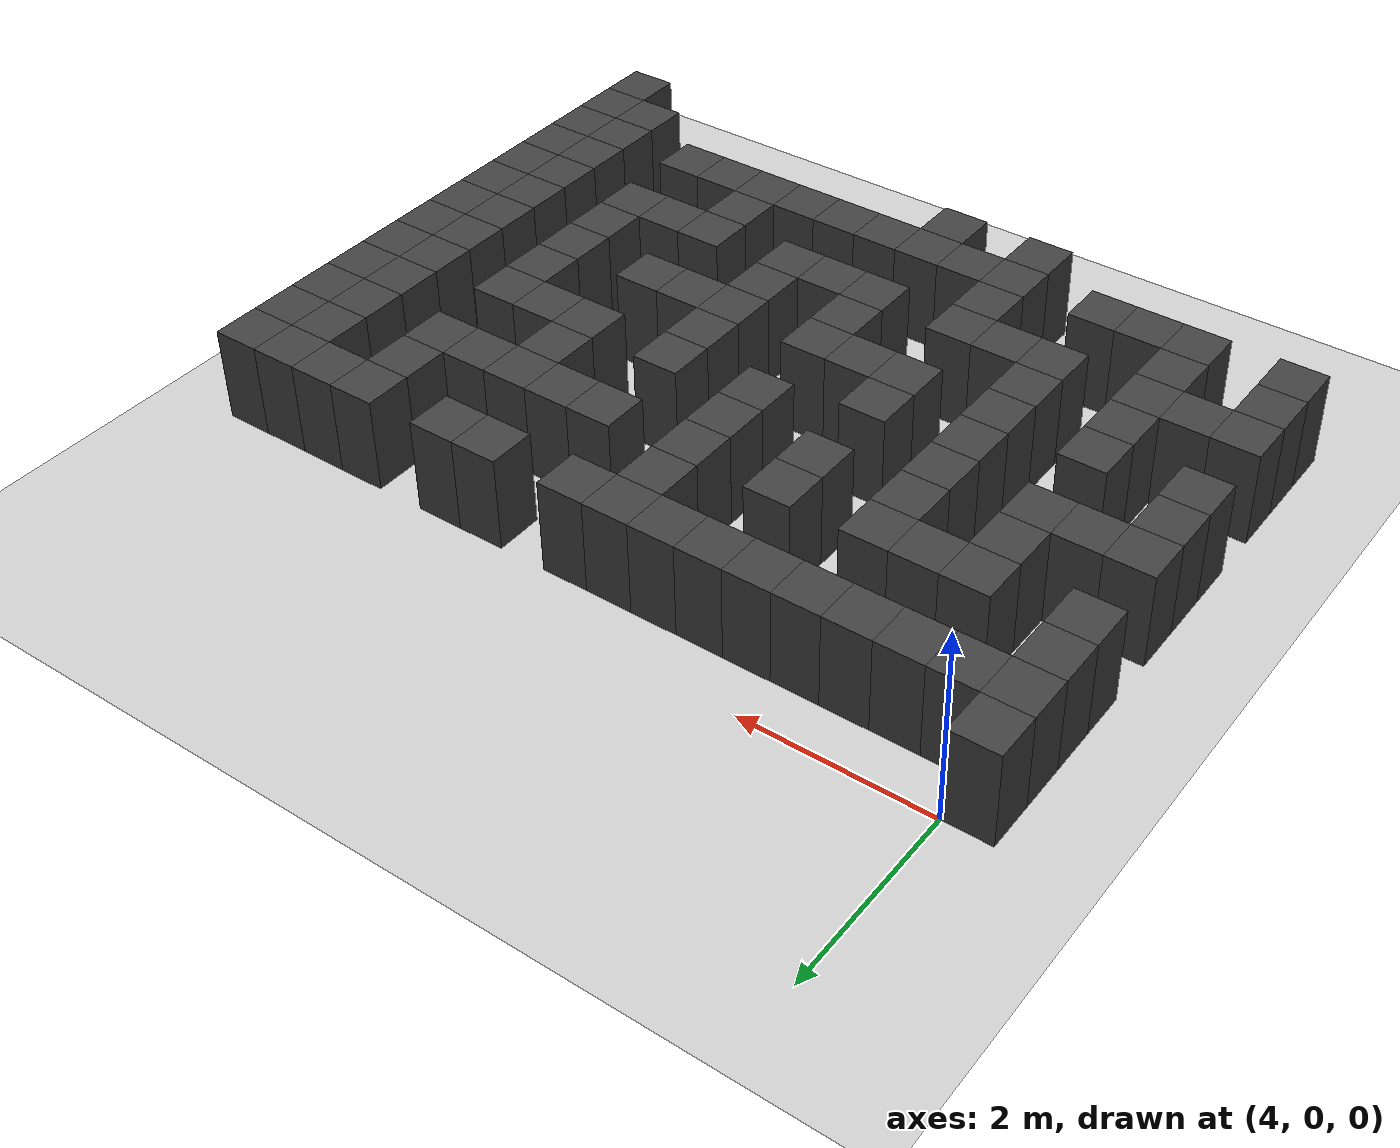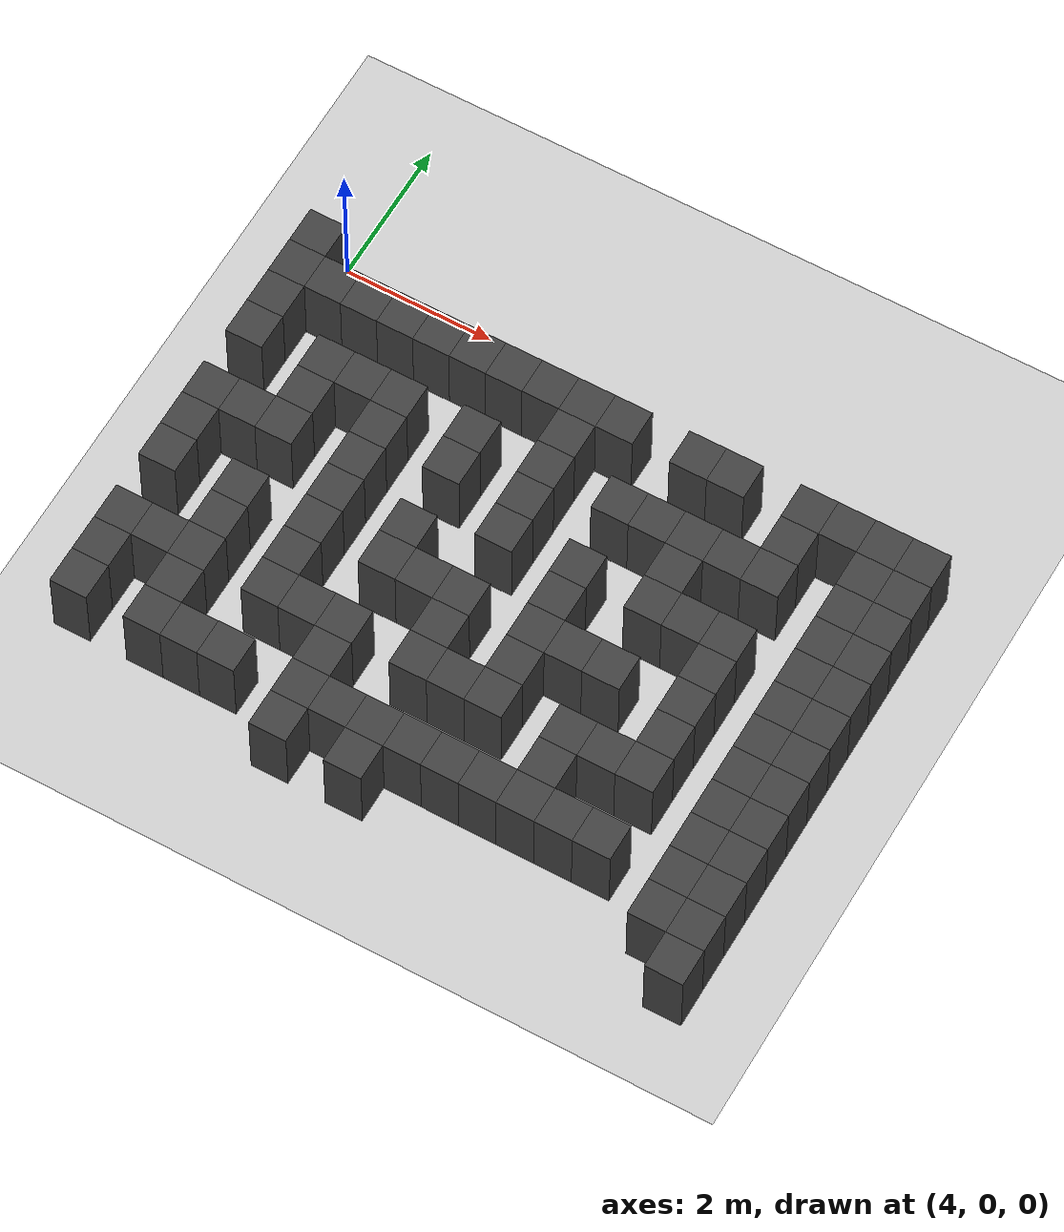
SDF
<sdf version="1.7">
 <world name="map_18814">
  <model name="ground_plane">
   <static>true</static>
   <link name="link">
    <collision name="collision">
     <geometry><plane><normal>0 0 1</normal><size>200 200</size></plane></geometry>
    </collision>
    <visual name="visual">
     <geometry><plane><normal>0 0 1</normal><size>200 200</size></plane></geometry>
     <material><ambient>0.8 0.8 0.8 1</ambient><diffuse>0.8 0.8 0.8 1</diffuse></material>
    </visual>
   </link>
  </model>
  <model name="maze_environment">
   <static>true</static>
   <link name="wall_656">
    <pose>3.750 -0.250 0.500 0 0 0</pose>
    <collision name="col"><geometry><box><size>0.5 0.5 1.0</size></box></geometry></collision>
    <visual name="vis">
     <geometry><box><size>0.5 0.5 1.0</size></box></geometry>
     <material><ambient>0.15 0.15 0.15 1</ambient><diffuse>0.25 0.25 0.25 1</diffuse></material>
    </visual>
   </link>
   <link name="wall_682">
    <pose>3.750 -0.750 0.500 0 0 0</pose>
    <collision name="col"><geometry><box><size>0.5 0.5 1.0</size></box></geometry></collision>
    <visual name="vis">
     <geometry><box><size>0.5 0.5 1.0</size></box></geometry>
     <material><ambient>0.15 0.15 0.15 1</ambient><diffuse>0.25 0.25 0.25 1</diffuse></material>
    </visual>
   </link>
   <link name="wall_683">
    <pose>4.250 -0.750 0.500 0 0 0</pose>
    <collision name="col"><geometry><box><size>0.5 0.5 1.0</size></box></geometry></collision>
    <visual name="vis">
     <geometry><box><size>0.5 0.5 1.0</size></box></geometry>
     <material><ambient>0.15 0.15 0.15 1</ambient><diffuse>0.25 0.25 0.25 1</diffuse></material>
    </visual>
   </link>
   <link name="wall_684">
    <pose>4.750 -0.750 0.500 0 0 0</pose>
    <collision name="col"><geometry><box><size>0.5 0.5 1.0</size></box></geometry></collision>
    <visual name="vis">
     <geometry><box><size>0.5 0.5 1.0</size></box></geometry>
     <material><ambient>0.15 0.15 0.15 1</ambient><diffuse>0.25 0.25 0.25 1</diffuse></material>
    </visual>
   </link>
   <link name="wall_685">
    <pose>5.250 -0.750 0.500 0 0 0</pose>
    <collision name="col"><geometry><box><size>0.5 0.5 1.0</size></box></geometry></collision>
    <visual name="vis">
     <geometry><box><size>0.5 0.5 1.0</size></box></geometry>
     <material><ambient>0.15 0.15 0.15 1</ambient><diffuse>0.25 0.25 0.25 1</diffuse></material>
    </visual>
   </link>
   <link name="wall_686">
    <pose>5.750 -0.750 0.500 0 0 0</pose>
    <collision name="col"><geometry><box><size>0.5 0.5 1.0</size></box></geometry></collision>
    <visual name="vis">
     <geometry><box><size>0.5 0.5 1.0</size></box></geometry>
     <material><ambient>0.15 0.15 0.15 1</ambient><diffuse>0.25 0.25 0.25 1</diffuse></material>
    </visual>
   </link>
   <link name="wall_687">
    <pose>6.250 -0.750 0.500 0 0 0</pose>
    <collision name="col"><geometry><box><size>0.5 0.5 1.0</size></box></geometry></collision>
    <visual name="vis">
     <geometry><box><size>0.5 0.5 1.0</size></box></geometry>
     <material><ambient>0.15 0.15 0.15 1</ambient><diffuse>0.25 0.25 0.25 1</diffuse></material>
    </visual>
   </link>
   <link name="wall_688">
    <pose>6.750 -0.750 0.500 0 0 0</pose>
    <collision name="col"><geometry><box><size>0.5 0.5 1.0</size></box></geometry></collision>
    <visual name="vis">
     <geometry><box><size>0.5 0.5 1.0</size></box></geometry>
     <material><ambient>0.15 0.15 0.15 1</ambient><diffuse>0.25 0.25 0.25 1</diffuse></material>
    </visual>
   </link>
   <link name="wall_689">
    <pose>7.250 -0.750 0.500 0 0 0</pose>
    <collision name="col"><geometry><box><size>0.5 0.5 1.0</size></box></geometry></collision>
    <visual name="vis">
     <geometry><box><size>0.5 0.5 1.0</size></box></geometry>
     <material><ambient>0.15 0.15 0.15 1</ambient><diffuse>0.25 0.25 0.25 1</diffuse></material>
    </visual>
   </link>
   <link name="wall_690">
    <pose>7.750 -0.750 0.500 0 0 0</pose>
    <collision name="col"><geometry><box><size>0.5 0.5 1.0</size></box></geometry></collision>
    <visual name="vis">
     <geometry><box><size>0.5 0.5 1.0</size></box></geometry>
     <material><ambient>0.15 0.15 0.15 1</ambient><diffuse>0.25 0.25 0.25 1</diffuse></material>
    </visual>
   </link>
   <link name="wall_691">
    <pose>8.250 -0.750 0.500 0 0 0</pose>
    <collision name="col"><geometry><box><size>0.5 0.5 1.0</size></box></geometry></collision>
    <visual name="vis">
     <geometry><box><size>0.5 0.5 1.0</size></box></geometry>
     <material><ambient>0.15 0.15 0.15 1</ambient><diffuse>0.25 0.25 0.25 1</diffuse></material>
    </visual>
   </link>
   <link name="wall_692">
    <pose>9.250 -0.750 0.500 0 0 0</pose>
    <collision name="col"><geometry><box><size>0.5 0.5 1.0</size></box></geometry></collision>
    <visual name="vis">
     <geometry><box><size>0.5 0.5 1.0</size></box></geometry>
     <material><ambient>0.15 0.15 0.15 1</ambient><diffuse>0.25 0.25 0.25 1</diffuse></material>
    </visual>
   </link>
   <link name="wall_693">
    <pose>9.750 -0.750 0.500 0 0 0</pose>
    <collision name="col"><geometry><box><size>0.5 0.5 1.0</size></box></geometry></collision>
    <visual name="vis">
     <geometry><box><size>0.5 0.5 1.0</size></box></geometry>
     <material><ambient>0.15 0.15 0.15 1</ambient><diffuse>0.25 0.25 0.25 1</diffuse></material>
    </visual>
   </link>
   <link name="wall_694">
    <pose>10.750 -0.750 0.500 0 0 0</pose>
    <collision name="col"><geometry><box><size>0.5 0.5 1.0</size></box></geometry></collision>
    <visual name="vis">
     <geometry><box><size>0.5 0.5 1.0</size></box></geometry>
     <material><ambient>0.15 0.15 0.15 1</ambient><diffuse>0.25 0.25 0.25 1</diffuse></material>
    </visual>
   </link>
   <link name="wall_695">
    <pose>11.250 -0.750 0.500 0 0 0</pose>
    <collision name="col"><geometry><box><size>0.5 0.5 1.0</size></box></geometry></collision>
    <visual name="vis">
     <geometry><box><size>0.5 0.5 1.0</size></box></geometry>
     <material><ambient>0.15 0.15 0.15 1</ambient><diffuse>0.25 0.25 0.25 1</diffuse></material>
    </visual>
   </link>
   <link name="wall_696">
    <pose>11.750 -0.750 0.500 0 0 0</pose>
    <collision name="col"><geometry><box><size>0.5 0.5 1.0</size></box></geometry></collision>
    <visual name="vis">
     <geometry><box><size>0.5 0.5 1.0</size></box></geometry>
     <material><ambient>0.15 0.15 0.15 1</ambient><diffuse>0.25 0.25 0.25 1</diffuse></material>
    </visual>
   </link>
   <link name="wall_697">
    <pose>12.250 -0.750 0.500 0 0 0</pose>
    <collision name="col"><geometry><box><size>0.5 0.5 1.0</size></box></geometry></collision>
    <visual name="vis">
     <geometry><box><size>0.5 0.5 1.0</size></box></geometry>
     <material><ambient>0.15 0.15 0.15 1</ambient><diffuse>0.25 0.25 0.25 1</diffuse></material>
    </visual>
   </link>
   <link name="wall_705">
    <pose>3.750 -1.250 0.500 0 0 0</pose>
    <collision name="col"><geometry><box><size>0.5 0.5 1.0</size></box></geometry></collision>
    <visual name="vis">
     <geometry><box><size>0.5 0.5 1.0</size></box></geometry>
     <material><ambient>0.15 0.15 0.15 1</ambient><diffuse>0.25 0.25 0.25 1</diffuse></material>
    </visual>
   </link>
   <link name="wall_706">
    <pose>7.750 -1.250 0.500 0 0 0</pose>
    <collision name="col"><geometry><box><size>0.5 0.5 1.0</size></box></geometry></collision>
    <visual name="vis">
     <geometry><box><size>0.5 0.5 1.0</size></box></geometry>
     <material><ambient>0.15 0.15 0.15 1</ambient><diffuse>0.25 0.25 0.25 1</diffuse></material>
    </visual>
   </link>
   <link name="wall_707">
    <pose>10.750 -1.250 0.500 0 0 0</pose>
    <collision name="col"><geometry><box><size>0.5 0.5 1.0</size></box></geometry></collision>
    <visual name="vis">
     <geometry><box><size>0.5 0.5 1.0</size></box></geometry>
     <material><ambient>0.15 0.15 0.15 1</ambient><diffuse>0.25 0.25 0.25 1</diffuse></material>
    </visual>
   </link>
   <link name="wall_708">
    <pose>11.750 -1.250 0.500 0 0 0</pose>
    <collision name="col"><geometry><box><size>0.5 0.5 1.0</size></box></geometry></collision>
    <visual name="vis">
     <geometry><box><size>0.5 0.5 1.0</size></box></geometry>
     <material><ambient>0.15 0.15 0.15 1</ambient><diffuse>0.25 0.25 0.25 1</diffuse></material>
    </visual>
   </link>
   <link name="wall_709">
    <pose>12.250 -1.250 0.500 0 0 0</pose>
    <collision name="col"><geometry><box><size>0.5 0.5 1.0</size></box></geometry></collision>
    <visual name="vis">
     <geometry><box><size>0.5 0.5 1.0</size></box></geometry>
     <material><ambient>0.15 0.15 0.15 1</ambient><diffuse>0.25 0.25 0.25 1</diffuse></material>
    </visual>
   </link>
   <link name="wall_735">
    <pose>3.750 -1.750 0.500 0 0 0</pose>
    <collision name="col"><geometry><box><size>0.5 0.5 1.0</size></box></geometry></collision>
    <visual name="vis">
     <geometry><box><size>0.5 0.5 1.0</size></box></geometry>
     <material><ambient>0.15 0.15 0.15 1</ambient><diffuse>0.25 0.25 0.25 1</diffuse></material>
    </visual>
   </link>
   <link name="wall_736">
    <pose>4.750 -1.750 0.500 0 0 0</pose>
    <collision name="col"><geometry><box><size>0.5 0.5 1.0</size></box></geometry></collision>
    <visual name="vis">
     <geometry><box><size>0.5 0.5 1.0</size></box></geometry>
     <material><ambient>0.15 0.15 0.15 1</ambient><diffuse>0.25 0.25 0.25 1</diffuse></material>
    </visual>
   </link>
   <link name="wall_737">
    <pose>5.250 -1.750 0.500 0 0 0</pose>
    <collision name="col"><geometry><box><size>0.5 0.5 1.0</size></box></geometry></collision>
    <visual name="vis">
     <geometry><box><size>0.5 0.5 1.0</size></box></geometry>
     <material><ambient>0.15 0.15 0.15 1</ambient><diffuse>0.25 0.25 0.25 1</diffuse></material>
    </visual>
   </link>
   <link name="wall_738">
    <pose>5.750 -1.750 0.500 0 0 0</pose>
    <collision name="col"><geometry><box><size>0.5 0.5 1.0</size></box></geometry></collision>
    <visual name="vis">
     <geometry><box><size>0.5 0.5 1.0</size></box></geometry>
     <material><ambient>0.15 0.15 0.15 1</ambient><diffuse>0.25 0.25 0.25 1</diffuse></material>
    </visual>
   </link>
   <link name="wall_739">
    <pose>6.750 -1.750 0.500 0 0 0</pose>
    <collision name="col"><geometry><box><size>0.5 0.5 1.0</size></box></geometry></collision>
    <visual name="vis">
     <geometry><box><size>0.5 0.5 1.0</size></box></geometry>
     <material><ambient>0.15 0.15 0.15 1</ambient><diffuse>0.25 0.25 0.25 1</diffuse></material>
    </visual>
   </link>
   <link name="wall_740">
    <pose>7.750 -1.750 0.500 0 0 0</pose>
    <collision name="col"><geometry><box><size>0.5 0.5 1.0</size></box></geometry></collision>
    <visual name="vis">
     <geometry><box><size>0.5 0.5 1.0</size></box></geometry>
     <material><ambient>0.15 0.15 0.15 1</ambient><diffuse>0.25 0.25 0.25 1</diffuse></material>
    </visual>
   </link>
   <link name="wall_741">
    <pose>8.750 -1.750 0.500 0 0 0</pose>
    <collision name="col"><geometry><box><size>0.5 0.5 1.0</size></box></geometry></collision>
    <visual name="vis">
     <geometry><box><size>0.5 0.5 1.0</size></box></geometry>
     <material><ambient>0.15 0.15 0.15 1</ambient><diffuse>0.25 0.25 0.25 1</diffuse></material>
    </visual>
   </link>
   <link name="wall_742">
    <pose>9.250 -1.750 0.500 0 0 0</pose>
    <collision name="col"><geometry><box><size>0.5 0.5 1.0</size></box></geometry></collision>
    <visual name="vis">
     <geometry><box><size>0.5 0.5 1.0</size></box></geometry>
     <material><ambient>0.15 0.15 0.15 1</ambient><diffuse>0.25 0.25 0.25 1</diffuse></material>
    </visual>
   </link>
   <link name="wall_743">
    <pose>9.750 -1.750 0.500 0 0 0</pose>
    <collision name="col"><geometry><box><size>0.5 0.5 1.0</size></box></geometry></collision>
    <visual name="vis">
     <geometry><box><size>0.5 0.5 1.0</size></box></geometry>
     <material><ambient>0.15 0.15 0.15 1</ambient><diffuse>0.25 0.25 0.25 1</diffuse></material>
    </visual>
   </link>
   <link name="wall_744">
    <pose>10.250 -1.750 0.500 0 0 0</pose>
    <collision name="col"><geometry><box><size>0.5 0.5 1.0</size></box></geometry></collision>
    <visual name="vis">
     <geometry><box><size>0.5 0.5 1.0</size></box></geometry>
     <material><ambient>0.15 0.15 0.15 1</ambient><diffuse>0.25 0.25 0.25 1</diffuse></material>
    </visual>
   </link>
   <link name="wall_745">
    <pose>10.750 -1.750 0.500 0 0 0</pose>
    <collision name="col"><geometry><box><size>0.5 0.5 1.0</size></box></geometry></collision>
    <visual name="vis">
     <geometry><box><size>0.5 0.5 1.0</size></box></geometry>
     <material><ambient>0.15 0.15 0.15 1</ambient><diffuse>0.25 0.25 0.25 1</diffuse></material>
    </visual>
   </link>
   <link name="wall_746">
    <pose>11.750 -1.750 0.500 0 0 0</pose>
    <collision name="col"><geometry><box><size>0.5 0.5 1.0</size></box></geometry></collision>
    <visual name="vis">
     <geometry><box><size>0.5 0.5 1.0</size></box></geometry>
     <material><ambient>0.15 0.15 0.15 1</ambient><diffuse>0.25 0.25 0.25 1</diffuse></material>
    </visual>
   </link>
   <link name="wall_747">
    <pose>12.250 -1.750 0.500 0 0 0</pose>
    <collision name="col"><geometry><box><size>0.5 0.5 1.0</size></box></geometry></collision>
    <visual name="vis">
     <geometry><box><size>0.5 0.5 1.0</size></box></geometry>
     <material><ambient>0.15 0.15 0.15 1</ambient><diffuse>0.25 0.25 0.25 1</diffuse></material>
    </visual>
   </link>
   <link name="wall_756">
    <pose>4.750 -2.250 0.500 0 0 0</pose>
    <collision name="col"><geometry><box><size>0.5 0.5 1.0</size></box></geometry></collision>
    <visual name="vis">
     <geometry><box><size>0.5 0.5 1.0</size></box></geometry>
     <material><ambient>0.15 0.15 0.15 1</ambient><diffuse>0.25 0.25 0.25 1</diffuse></material>
    </visual>
   </link>
   <link name="wall_757">
    <pose>5.750 -2.250 0.500 0 0 0</pose>
    <collision name="col"><geometry><box><size>0.5 0.5 1.0</size></box></geometry></collision>
    <visual name="vis">
     <geometry><box><size>0.5 0.5 1.0</size></box></geometry>
     <material><ambient>0.15 0.15 0.15 1</ambient><diffuse>0.25 0.25 0.25 1</diffuse></material>
    </visual>
   </link>
   <link name="wall_758">
    <pose>6.750 -2.250 0.500 0 0 0</pose>
    <collision name="col"><geometry><box><size>0.5 0.5 1.0</size></box></geometry></collision>
    <visual name="vis">
     <geometry><box><size>0.5 0.5 1.0</size></box></geometry>
     <material><ambient>0.15 0.15 0.15 1</ambient><diffuse>0.25 0.25 0.25 1</diffuse></material>
    </visual>
   </link>
   <link name="wall_759">
    <pose>7.750 -2.250 0.500 0 0 0</pose>
    <collision name="col"><geometry><box><size>0.5 0.5 1.0</size></box></geometry></collision>
    <visual name="vis">
     <geometry><box><size>0.5 0.5 1.0</size></box></geometry>
     <material><ambient>0.15 0.15 0.15 1</ambient><diffuse>0.25 0.25 0.25 1</diffuse></material>
    </visual>
   </link>
   <link name="wall_760">
    <pose>9.750 -2.250 0.500 0 0 0</pose>
    <collision name="col"><geometry><box><size>0.5 0.5 1.0</size></box></geometry></collision>
    <visual name="vis">
     <geometry><box><size>0.5 0.5 1.0</size></box></geometry>
     <material><ambient>0.15 0.15 0.15 1</ambient><diffuse>0.25 0.25 0.25 1</diffuse></material>
    </visual>
   </link>
   <link name="wall_761">
    <pose>11.750 -2.250 0.500 0 0 0</pose>
    <collision name="col"><geometry><box><size>0.5 0.5 1.0</size></box></geometry></collision>
    <visual name="vis">
     <geometry><box><size>0.5 0.5 1.0</size></box></geometry>
     <material><ambient>0.15 0.15 0.15 1</ambient><diffuse>0.25 0.25 0.25 1</diffuse></material>
    </visual>
   </link>
   <link name="wall_762">
    <pose>12.250 -2.250 0.500 0 0 0</pose>
    <collision name="col"><geometry><box><size>0.5 0.5 1.0</size></box></geometry></collision>
    <visual name="vis">
     <geometry><box><size>0.5 0.5 1.0</size></box></geometry>
     <material><ambient>0.15 0.15 0.15 1</ambient><diffuse>0.25 0.25 0.25 1</diffuse></material>
    </visual>
   </link>
   <link name="wall_788">
    <pose>3.750 -2.750 0.500 0 0 0</pose>
    <collision name="col"><geometry><box><size>0.5 0.5 1.0</size></box></geometry></collision>
    <visual name="vis">
     <geometry><box><size>0.5 0.5 1.0</size></box></geometry>
     <material><ambient>0.15 0.15 0.15 1</ambient><diffuse>0.25 0.25 0.25 1</diffuse></material>
    </visual>
   </link>
   <link name="wall_789">
    <pose>4.250 -2.750 0.500 0 0 0</pose>
    <collision name="col"><geometry><box><size>0.5 0.5 1.0</size></box></geometry></collision>
    <visual name="vis">
     <geometry><box><size>0.5 0.5 1.0</size></box></geometry>
     <material><ambient>0.15 0.15 0.15 1</ambient><diffuse>0.25 0.25 0.25 1</diffuse></material>
    </visual>
   </link>
   <link name="wall_790">
    <pose>4.750 -2.750 0.500 0 0 0</pose>
    <collision name="col"><geometry><box><size>0.5 0.5 1.0</size></box></geometry></collision>
    <visual name="vis">
     <geometry><box><size>0.5 0.5 1.0</size></box></geometry>
     <material><ambient>0.15 0.15 0.15 1</ambient><diffuse>0.25 0.25 0.25 1</diffuse></material>
    </visual>
   </link>
   <link name="wall_791">
    <pose>5.750 -2.750 0.500 0 0 0</pose>
    <collision name="col"><geometry><box><size>0.5 0.5 1.0</size></box></geometry></collision>
    <visual name="vis">
     <geometry><box><size>0.5 0.5 1.0</size></box></geometry>
     <material><ambient>0.15 0.15 0.15 1</ambient><diffuse>0.25 0.25 0.25 1</diffuse></material>
    </visual>
   </link>
   <link name="wall_792">
    <pose>7.750 -2.750 0.500 0 0 0</pose>
    <collision name="col"><geometry><box><size>0.5 0.5 1.0</size></box></geometry></collision>
    <visual name="vis">
     <geometry><box><size>0.5 0.5 1.0</size></box></geometry>
     <material><ambient>0.15 0.15 0.15 1</ambient><diffuse>0.25 0.25 0.25 1</diffuse></material>
    </visual>
   </link>
   <link name="wall_793">
    <pose>8.750 -2.750 0.500 0 0 0</pose>
    <collision name="col"><geometry><box><size>0.5 0.5 1.0</size></box></geometry></collision>
    <visual name="vis">
     <geometry><box><size>0.5 0.5 1.0</size></box></geometry>
     <material><ambient>0.15 0.15 0.15 1</ambient><diffuse>0.25 0.25 0.25 1</diffuse></material>
    </visual>
   </link>
   <link name="wall_794">
    <pose>9.750 -2.750 0.500 0 0 0</pose>
    <collision name="col"><geometry><box><size>0.5 0.5 1.0</size></box></geometry></collision>
    <visual name="vis">
     <geometry><box><size>0.5 0.5 1.0</size></box></geometry>
     <material><ambient>0.15 0.15 0.15 1</ambient><diffuse>0.25 0.25 0.25 1</diffuse></material>
    </visual>
   </link>
   <link name="wall_795">
    <pose>10.250 -2.750 0.500 0 0 0</pose>
    <collision name="col"><geometry><box><size>0.5 0.5 1.0</size></box></geometry></collision>
    <visual name="vis">
     <geometry><box><size>0.5 0.5 1.0</size></box></geometry>
     <material><ambient>0.15 0.15 0.15 1</ambient><diffuse>0.25 0.25 0.25 1</diffuse></material>
    </visual>
   </link>
   <link name="wall_796">
    <pose>10.750 -2.750 0.500 0 0 0</pose>
    <collision name="col"><geometry><box><size>0.5 0.5 1.0</size></box></geometry></collision>
    <visual name="vis">
     <geometry><box><size>0.5 0.5 1.0</size></box></geometry>
     <material><ambient>0.15 0.15 0.15 1</ambient><diffuse>0.25 0.25 0.25 1</diffuse></material>
    </visual>
   </link>
   <link name="wall_797">
    <pose>11.750 -2.750 0.500 0 0 0</pose>
    <collision name="col"><geometry><box><size>0.5 0.5 1.0</size></box></geometry></collision>
    <visual name="vis">
     <geometry><box><size>0.5 0.5 1.0</size></box></geometry>
     <material><ambient>0.15 0.15 0.15 1</ambient><diffuse>0.25 0.25 0.25 1</diffuse></material>
    </visual>
   </link>
   <link name="wall_798">
    <pose>12.250 -2.750 0.500 0 0 0</pose>
    <collision name="col"><geometry><box><size>0.5 0.5 1.0</size></box></geometry></collision>
    <visual name="vis">
     <geometry><box><size>0.5 0.5 1.0</size></box></geometry>
     <material><ambient>0.15 0.15 0.15 1</ambient><diffuse>0.25 0.25 0.25 1</diffuse></material>
    </visual>
   </link>
   <link name="wall_807">
    <pose>3.750 -3.250 0.500 0 0 0</pose>
    <collision name="col"><geometry><box><size>0.5 0.5 1.0</size></box></geometry></collision>
    <visual name="vis">
     <geometry><box><size>0.5 0.5 1.0</size></box></geometry>
     <material><ambient>0.15 0.15 0.15 1</ambient><diffuse>0.25 0.25 0.25 1</diffuse></material>
    </visual>
   </link>
   <link name="wall_808">
    <pose>5.750 -3.250 0.500 0 0 0</pose>
    <collision name="col"><geometry><box><size>0.5 0.5 1.0</size></box></geometry></collision>
    <visual name="vis">
     <geometry><box><size>0.5 0.5 1.0</size></box></geometry>
     <material><ambient>0.15 0.15 0.15 1</ambient><diffuse>0.25 0.25 0.25 1</diffuse></material>
    </visual>
   </link>
   <link name="wall_809">
    <pose>6.750 -3.250 0.500 0 0 0</pose>
    <collision name="col"><geometry><box><size>0.5 0.5 1.0</size></box></geometry></collision>
    <visual name="vis">
     <geometry><box><size>0.5 0.5 1.0</size></box></geometry>
     <material><ambient>0.15 0.15 0.15 1</ambient><diffuse>0.25 0.25 0.25 1</diffuse></material>
    </visual>
   </link>
   <link name="wall_810">
    <pose>8.750 -3.250 0.500 0 0 0</pose>
    <collision name="col"><geometry><box><size>0.5 0.5 1.0</size></box></geometry></collision>
    <visual name="vis">
     <geometry><box><size>0.5 0.5 1.0</size></box></geometry>
     <material><ambient>0.15 0.15 0.15 1</ambient><diffuse>0.25 0.25 0.25 1</diffuse></material>
    </visual>
   </link>
   <link name="wall_811">
    <pose>10.750 -3.250 0.500 0 0 0</pose>
    <collision name="col"><geometry><box><size>0.5 0.5 1.0</size></box></geometry></collision>
    <visual name="vis">
     <geometry><box><size>0.5 0.5 1.0</size></box></geometry>
     <material><ambient>0.15 0.15 0.15 1</ambient><diffuse>0.25 0.25 0.25 1</diffuse></material>
    </visual>
   </link>
   <link name="wall_812">
    <pose>11.750 -3.250 0.500 0 0 0</pose>
    <collision name="col"><geometry><box><size>0.5 0.5 1.0</size></box></geometry></collision>
    <visual name="vis">
     <geometry><box><size>0.5 0.5 1.0</size></box></geometry>
     <material><ambient>0.15 0.15 0.15 1</ambient><diffuse>0.25 0.25 0.25 1</diffuse></material>
    </visual>
   </link>
   <link name="wall_813">
    <pose>12.250 -3.250 0.500 0 0 0</pose>
    <collision name="col"><geometry><box><size>0.5 0.5 1.0</size></box></geometry></collision>
    <visual name="vis">
     <geometry><box><size>0.5 0.5 1.0</size></box></geometry>
     <material><ambient>0.15 0.15 0.15 1</ambient><diffuse>0.25 0.25 0.25 1</diffuse></material>
    </visual>
   </link>
   <link name="wall_836">
    <pose>3.750 -3.750 0.500 0 0 0</pose>
    <collision name="col"><geometry><box><size>0.5 0.5 1.0</size></box></geometry></collision>
    <visual name="vis">
     <geometry><box><size>0.5 0.5 1.0</size></box></geometry>
     <material><ambient>0.15 0.15 0.15 1</ambient><diffuse>0.25 0.25 0.25 1</diffuse></material>
    </visual>
   </link>
   <link name="wall_837">
    <pose>4.750 -3.750 0.500 0 0 0</pose>
    <collision name="col"><geometry><box><size>0.5 0.5 1.0</size></box></geometry></collision>
    <visual name="vis">
     <geometry><box><size>0.5 0.5 1.0</size></box></geometry>
     <material><ambient>0.15 0.15 0.15 1</ambient><diffuse>0.25 0.25 0.25 1</diffuse></material>
    </visual>
   </link>
   <link name="wall_838">
    <pose>5.750 -3.750 0.500 0 0 0</pose>
    <collision name="col"><geometry><box><size>0.5 0.5 1.0</size></box></geometry></collision>
    <visual name="vis">
     <geometry><box><size>0.5 0.5 1.0</size></box></geometry>
     <material><ambient>0.15 0.15 0.15 1</ambient><diffuse>0.25 0.25 0.25 1</diffuse></material>
    </visual>
   </link>
   <link name="wall_839">
    <pose>6.750 -3.750 0.500 0 0 0</pose>
    <collision name="col"><geometry><box><size>0.5 0.5 1.0</size></box></geometry></collision>
    <visual name="vis">
     <geometry><box><size>0.5 0.5 1.0</size></box></geometry>
     <material><ambient>0.15 0.15 0.15 1</ambient><diffuse>0.25 0.25 0.25 1</diffuse></material>
    </visual>
   </link>
   <link name="wall_840">
    <pose>7.250 -3.750 0.500 0 0 0</pose>
    <collision name="col"><geometry><box><size>0.5 0.5 1.0</size></box></geometry></collision>
    <visual name="vis">
     <geometry><box><size>0.5 0.5 1.0</size></box></geometry>
     <material><ambient>0.15 0.15 0.15 1</ambient><diffuse>0.25 0.25 0.25 1</diffuse></material>
    </visual>
   </link>
   <link name="wall_841">
    <pose>7.750 -3.750 0.500 0 0 0</pose>
    <collision name="col"><geometry><box><size>0.5 0.5 1.0</size></box></geometry></collision>
    <visual name="vis">
     <geometry><box><size>0.5 0.5 1.0</size></box></geometry>
     <material><ambient>0.15 0.15 0.15 1</ambient><diffuse>0.25 0.25 0.25 1</diffuse></material>
    </visual>
   </link>
   <link name="wall_842">
    <pose>8.750 -3.750 0.500 0 0 0</pose>
    <collision name="col"><geometry><box><size>0.5 0.5 1.0</size></box></geometry></collision>
    <visual name="vis">
     <geometry><box><size>0.5 0.5 1.0</size></box></geometry>
     <material><ambient>0.15 0.15 0.15 1</ambient><diffuse>0.25 0.25 0.25 1</diffuse></material>
    </visual>
   </link>
   <link name="wall_843">
    <pose>9.250 -3.750 0.500 0 0 0</pose>
    <collision name="col"><geometry><box><size>0.5 0.5 1.0</size></box></geometry></collision>
    <visual name="vis">
     <geometry><box><size>0.5 0.5 1.0</size></box></geometry>
     <material><ambient>0.15 0.15 0.15 1</ambient><diffuse>0.25 0.25 0.25 1</diffuse></material>
    </visual>
   </link>
   <link name="wall_844">
    <pose>9.750 -3.750 0.500 0 0 0</pose>
    <collision name="col"><geometry><box><size>0.5 0.5 1.0</size></box></geometry></collision>
    <visual name="vis">
     <geometry><box><size>0.5 0.5 1.0</size></box></geometry>
     <material><ambient>0.15 0.15 0.15 1</ambient><diffuse>0.25 0.25 0.25 1</diffuse></material>
    </visual>
   </link>
   <link name="wall_845">
    <pose>10.750 -3.750 0.500 0 0 0</pose>
    <collision name="col"><geometry><box><size>0.5 0.5 1.0</size></box></geometry></collision>
    <visual name="vis">
     <geometry><box><size>0.5 0.5 1.0</size></box></geometry>
     <material><ambient>0.15 0.15 0.15 1</ambient><diffuse>0.25 0.25 0.25 1</diffuse></material>
    </visual>
   </link>
   <link name="wall_846">
    <pose>11.750 -3.750 0.500 0 0 0</pose>
    <collision name="col"><geometry><box><size>0.5 0.5 1.0</size></box></geometry></collision>
    <visual name="vis">
     <geometry><box><size>0.5 0.5 1.0</size></box></geometry>
     <material><ambient>0.15 0.15 0.15 1</ambient><diffuse>0.25 0.25 0.25 1</diffuse></material>
    </visual>
   </link>
   <link name="wall_847">
    <pose>12.250 -3.750 0.500 0 0 0</pose>
    <collision name="col"><geometry><box><size>0.5 0.5 1.0</size></box></geometry></collision>
    <visual name="vis">
     <geometry><box><size>0.5 0.5 1.0</size></box></geometry>
     <material><ambient>0.15 0.15 0.15 1</ambient><diffuse>0.25 0.25 0.25 1</diffuse></material>
    </visual>
   </link>
   <link name="wall_858">
    <pose>4.750 -4.250 0.500 0 0 0</pose>
    <collision name="col"><geometry><box><size>0.5 0.5 1.0</size></box></geometry></collision>
    <visual name="vis">
     <geometry><box><size>0.5 0.5 1.0</size></box></geometry>
     <material><ambient>0.15 0.15 0.15 1</ambient><diffuse>0.25 0.25 0.25 1</diffuse></material>
    </visual>
   </link>
   <link name="wall_859">
    <pose>5.750 -4.250 0.500 0 0 0</pose>
    <collision name="col"><geometry><box><size>0.5 0.5 1.0</size></box></geometry></collision>
    <visual name="vis">
     <geometry><box><size>0.5 0.5 1.0</size></box></geometry>
     <material><ambient>0.15 0.15 0.15 1</ambient><diffuse>0.25 0.25 0.25 1</diffuse></material>
    </visual>
   </link>
   <link name="wall_860">
    <pose>7.750 -4.250 0.500 0 0 0</pose>
    <collision name="col"><geometry><box><size>0.5 0.5 1.0</size></box></geometry></collision>
    <visual name="vis">
     <geometry><box><size>0.5 0.5 1.0</size></box></geometry>
     <material><ambient>0.15 0.15 0.15 1</ambient><diffuse>0.25 0.25 0.25 1</diffuse></material>
    </visual>
   </link>
   <link name="wall_861">
    <pose>8.750 -4.250 0.500 0 0 0</pose>
    <collision name="col"><geometry><box><size>0.5 0.5 1.0</size></box></geometry></collision>
    <visual name="vis">
     <geometry><box><size>0.5 0.5 1.0</size></box></geometry>
     <material><ambient>0.15 0.15 0.15 1</ambient><diffuse>0.25 0.25 0.25 1</diffuse></material>
    </visual>
   </link>
   <link name="wall_862">
    <pose>10.750 -4.250 0.500 0 0 0</pose>
    <collision name="col"><geometry><box><size>0.5 0.5 1.0</size></box></geometry></collision>
    <visual name="vis">
     <geometry><box><size>0.5 0.5 1.0</size></box></geometry>
     <material><ambient>0.15 0.15 0.15 1</ambient><diffuse>0.25 0.25 0.25 1</diffuse></material>
    </visual>
   </link>
   <link name="wall_863">
    <pose>11.750 -4.250 0.500 0 0 0</pose>
    <collision name="col"><geometry><box><size>0.5 0.5 1.0</size></box></geometry></collision>
    <visual name="vis">
     <geometry><box><size>0.5 0.5 1.0</size></box></geometry>
     <material><ambient>0.15 0.15 0.15 1</ambient><diffuse>0.25 0.25 0.25 1</diffuse></material>
    </visual>
   </link>
   <link name="wall_864">
    <pose>12.250 -4.250 0.500 0 0 0</pose>
    <collision name="col"><geometry><box><size>0.5 0.5 1.0</size></box></geometry></collision>
    <visual name="vis">
     <geometry><box><size>0.5 0.5 1.0</size></box></geometry>
     <material><ambient>0.15 0.15 0.15 1</ambient><diffuse>0.25 0.25 0.25 1</diffuse></material>
    </visual>
   </link>
   <link name="wall_885">
    <pose>3.750 -4.750 0.500 0 0 0</pose>
    <collision name="col"><geometry><box><size>0.5 0.5 1.0</size></box></geometry></collision>
    <visual name="vis">
     <geometry><box><size>0.5 0.5 1.0</size></box></geometry>
     <material><ambient>0.15 0.15 0.15 1</ambient><diffuse>0.25 0.25 0.25 1</diffuse></material>
    </visual>
   </link>
   <link name="wall_886">
    <pose>4.250 -4.750 0.500 0 0 0</pose>
    <collision name="col"><geometry><box><size>0.5 0.5 1.0</size></box></geometry></collision>
    <visual name="vis">
     <geometry><box><size>0.5 0.5 1.0</size></box></geometry>
     <material><ambient>0.15 0.15 0.15 1</ambient><diffuse>0.25 0.25 0.25 1</diffuse></material>
    </visual>
   </link>
   <link name="wall_887">
    <pose>4.750 -4.750 0.500 0 0 0</pose>
    <collision name="col"><geometry><box><size>0.5 0.5 1.0</size></box></geometry></collision>
    <visual name="vis">
     <geometry><box><size>0.5 0.5 1.0</size></box></geometry>
     <material><ambient>0.15 0.15 0.15 1</ambient><diffuse>0.25 0.25 0.25 1</diffuse></material>
    </visual>
   </link>
   <link name="wall_888">
    <pose>5.750 -4.750 0.500 0 0 0</pose>
    <collision name="col"><geometry><box><size>0.5 0.5 1.0</size></box></geometry></collision>
    <visual name="vis">
     <geometry><box><size>0.5 0.5 1.0</size></box></geometry>
     <material><ambient>0.15 0.15 0.15 1</ambient><diffuse>0.25 0.25 0.25 1</diffuse></material>
    </visual>
   </link>
   <link name="wall_889">
    <pose>6.250 -4.750 0.500 0 0 0</pose>
    <collision name="col"><geometry><box><size>0.5 0.5 1.0</size></box></geometry></collision>
    <visual name="vis">
     <geometry><box><size>0.5 0.5 1.0</size></box></geometry>
     <material><ambient>0.15 0.15 0.15 1</ambient><diffuse>0.25 0.25 0.25 1</diffuse></material>
    </visual>
   </link>
   <link name="wall_890">
    <pose>6.750 -4.750 0.500 0 0 0</pose>
    <collision name="col"><geometry><box><size>0.5 0.5 1.0</size></box></geometry></collision>
    <visual name="vis">
     <geometry><box><size>0.5 0.5 1.0</size></box></geometry>
     <material><ambient>0.15 0.15 0.15 1</ambient><diffuse>0.25 0.25 0.25 1</diffuse></material>
    </visual>
   </link>
   <link name="wall_891">
    <pose>7.750 -4.750 0.500 0 0 0</pose>
    <collision name="col"><geometry><box><size>0.5 0.5 1.0</size></box></geometry></collision>
    <visual name="vis">
     <geometry><box><size>0.5 0.5 1.0</size></box></geometry>
     <material><ambient>0.15 0.15 0.15 1</ambient><diffuse>0.25 0.25 0.25 1</diffuse></material>
    </visual>
   </link>
   <link name="wall_892">
    <pose>8.250 -4.750 0.500 0 0 0</pose>
    <collision name="col"><geometry><box><size>0.5 0.5 1.0</size></box></geometry></collision>
    <visual name="vis">
     <geometry><box><size>0.5 0.5 1.0</size></box></geometry>
     <material><ambient>0.15 0.15 0.15 1</ambient><diffuse>0.25 0.25 0.25 1</diffuse></material>
    </visual>
   </link>
   <link name="wall_893">
    <pose>8.750 -4.750 0.500 0 0 0</pose>
    <collision name="col"><geometry><box><size>0.5 0.5 1.0</size></box></geometry></collision>
    <visual name="vis">
     <geometry><box><size>0.5 0.5 1.0</size></box></geometry>
     <material><ambient>0.15 0.15 0.15 1</ambient><diffuse>0.25 0.25 0.25 1</diffuse></material>
    </visual>
   </link>
   <link name="wall_894">
    <pose>9.750 -4.750 0.500 0 0 0</pose>
    <collision name="col"><geometry><box><size>0.5 0.5 1.0</size></box></geometry></collision>
    <visual name="vis">
     <geometry><box><size>0.5 0.5 1.0</size></box></geometry>
     <material><ambient>0.15 0.15 0.15 1</ambient><diffuse>0.25 0.25 0.25 1</diffuse></material>
    </visual>
   </link>
   <link name="wall_895">
    <pose>10.250 -4.750 0.500 0 0 0</pose>
    <collision name="col"><geometry><box><size>0.5 0.5 1.0</size></box></geometry></collision>
    <visual name="vis">
     <geometry><box><size>0.5 0.5 1.0</size></box></geometry>
     <material><ambient>0.15 0.15 0.15 1</ambient><diffuse>0.25 0.25 0.25 1</diffuse></material>
    </visual>
   </link>
   <link name="wall_896">
    <pose>10.750 -4.750 0.500 0 0 0</pose>
    <collision name="col"><geometry><box><size>0.5 0.5 1.0</size></box></geometry></collision>
    <visual name="vis">
     <geometry><box><size>0.5 0.5 1.0</size></box></geometry>
     <material><ambient>0.15 0.15 0.15 1</ambient><diffuse>0.25 0.25 0.25 1</diffuse></material>
    </visual>
   </link>
   <link name="wall_897">
    <pose>11.750 -4.750 0.500 0 0 0</pose>
    <collision name="col"><geometry><box><size>0.5 0.5 1.0</size></box></geometry></collision>
    <visual name="vis">
     <geometry><box><size>0.5 0.5 1.0</size></box></geometry>
     <material><ambient>0.15 0.15 0.15 1</ambient><diffuse>0.25 0.25 0.25 1</diffuse></material>
    </visual>
   </link>
   <link name="wall_898">
    <pose>12.250 -4.750 0.500 0 0 0</pose>
    <collision name="col"><geometry><box><size>0.5 0.5 1.0</size></box></geometry></collision>
    <visual name="vis">
     <geometry><box><size>0.5 0.5 1.0</size></box></geometry>
     <material><ambient>0.15 0.15 0.15 1</ambient><diffuse>0.25 0.25 0.25 1</diffuse></material>
    </visual>
   </link>
   <link name="wall_909">
    <pose>3.750 -5.250 0.500 0 0 0</pose>
    <collision name="col"><geometry><box><size>0.5 0.5 1.0</size></box></geometry></collision>
    <visual name="vis">
     <geometry><box><size>0.5 0.5 1.0</size></box></geometry>
     <material><ambient>0.15 0.15 0.15 1</ambient><diffuse>0.25 0.25 0.25 1</diffuse></material>
    </visual>
   </link>
   <link name="wall_910">
    <pose>4.750 -5.250 0.500 0 0 0</pose>
    <collision name="col"><geometry><box><size>0.5 0.5 1.0</size></box></geometry></collision>
    <visual name="vis">
     <geometry><box><size>0.5 0.5 1.0</size></box></geometry>
     <material><ambient>0.15 0.15 0.15 1</ambient><diffuse>0.25 0.25 0.25 1</diffuse></material>
    </visual>
   </link>
   <link name="wall_911">
    <pose>6.750 -5.250 0.500 0 0 0</pose>
    <collision name="col"><geometry><box><size>0.5 0.5 1.0</size></box></geometry></collision>
    <visual name="vis">
     <geometry><box><size>0.5 0.5 1.0</size></box></geometry>
     <material><ambient>0.15 0.15 0.15 1</ambient><diffuse>0.25 0.25 0.25 1</diffuse></material>
    </visual>
   </link>
   <link name="wall_912">
    <pose>9.750 -5.250 0.500 0 0 0</pose>
    <collision name="col"><geometry><box><size>0.5 0.5 1.0</size></box></geometry></collision>
    <visual name="vis">
     <geometry><box><size>0.5 0.5 1.0</size></box></geometry>
     <material><ambient>0.15 0.15 0.15 1</ambient><diffuse>0.25 0.25 0.25 1</diffuse></material>
    </visual>
   </link>
   <link name="wall_913">
    <pose>11.750 -5.250 0.500 0 0 0</pose>
    <collision name="col"><geometry><box><size>0.5 0.5 1.0</size></box></geometry></collision>
    <visual name="vis">
     <geometry><box><size>0.5 0.5 1.0</size></box></geometry>
     <material><ambient>0.15 0.15 0.15 1</ambient><diffuse>0.25 0.25 0.25 1</diffuse></material>
    </visual>
   </link>
   <link name="wall_914">
    <pose>12.250 -5.250 0.500 0 0 0</pose>
    <collision name="col"><geometry><box><size>0.5 0.5 1.0</size></box></geometry></collision>
    <visual name="vis">
     <geometry><box><size>0.5 0.5 1.0</size></box></geometry>
     <material><ambient>0.15 0.15 0.15 1</ambient><diffuse>0.25 0.25 0.25 1</diffuse></material>
    </visual>
   </link>
   <link name="wall_936">
    <pose>3.750 -5.750 0.500 0 0 0</pose>
    <collision name="col"><geometry><box><size>0.5 0.5 1.0</size></box></geometry></collision>
    <visual name="vis">
     <geometry><box><size>0.5 0.5 1.0</size></box></geometry>
     <material><ambient>0.15 0.15 0.15 1</ambient><diffuse>0.25 0.25 0.25 1</diffuse></material>
    </visual>
   </link>
   <link name="wall_937">
    <pose>4.750 -5.750 0.500 0 0 0</pose>
    <collision name="col"><geometry><box><size>0.5 0.5 1.0</size></box></geometry></collision>
    <visual name="vis">
     <geometry><box><size>0.5 0.5 1.0</size></box></geometry>
     <material><ambient>0.15 0.15 0.15 1</ambient><diffuse>0.25 0.25 0.25 1</diffuse></material>
    </visual>
   </link>
   <link name="wall_938">
    <pose>5.250 -5.750 0.500 0 0 0</pose>
    <collision name="col"><geometry><box><size>0.5 0.5 1.0</size></box></geometry></collision>
    <visual name="vis">
     <geometry><box><size>0.5 0.5 1.0</size></box></geometry>
     <material><ambient>0.15 0.15 0.15 1</ambient><diffuse>0.25 0.25 0.25 1</diffuse></material>
    </visual>
   </link>
   <link name="wall_939">
    <pose>5.750 -5.750 0.500 0 0 0</pose>
    <collision name="col"><geometry><box><size>0.5 0.5 1.0</size></box></geometry></collision>
    <visual name="vis">
     <geometry><box><size>0.5 0.5 1.0</size></box></geometry>
     <material><ambient>0.15 0.15 0.15 1</ambient><diffuse>0.25 0.25 0.25 1</diffuse></material>
    </visual>
   </link>
   <link name="wall_940">
    <pose>6.750 -5.750 0.500 0 0 0</pose>
    <collision name="col"><geometry><box><size>0.5 0.5 1.0</size></box></geometry></collision>
    <visual name="vis">
     <geometry><box><size>0.5 0.5 1.0</size></box></geometry>
     <material><ambient>0.15 0.15 0.15 1</ambient><diffuse>0.25 0.25 0.25 1</diffuse></material>
    </visual>
   </link>
   <link name="wall_941">
    <pose>7.250 -5.750 0.500 0 0 0</pose>
    <collision name="col"><geometry><box><size>0.5 0.5 1.0</size></box></geometry></collision>
    <visual name="vis">
     <geometry><box><size>0.5 0.5 1.0</size></box></geometry>
     <material><ambient>0.15 0.15 0.15 1</ambient><diffuse>0.25 0.25 0.25 1</diffuse></material>
    </visual>
   </link>
   <link name="wall_942">
    <pose>7.750 -5.750 0.500 0 0 0</pose>
    <collision name="col"><geometry><box><size>0.5 0.5 1.0</size></box></geometry></collision>
    <visual name="vis">
     <geometry><box><size>0.5 0.5 1.0</size></box></geometry>
     <material><ambient>0.15 0.15 0.15 1</ambient><diffuse>0.25 0.25 0.25 1</diffuse></material>
    </visual>
   </link>
   <link name="wall_943">
    <pose>8.250 -5.750 0.500 0 0 0</pose>
    <collision name="col"><geometry><box><size>0.5 0.5 1.0</size></box></geometry></collision>
    <visual name="vis">
     <geometry><box><size>0.5 0.5 1.0</size></box></geometry>
     <material><ambient>0.15 0.15 0.15 1</ambient><diffuse>0.25 0.25 0.25 1</diffuse></material>
    </visual>
   </link>
   <link name="wall_944">
    <pose>8.750 -5.750 0.500 0 0 0</pose>
    <collision name="col"><geometry><box><size>0.5 0.5 1.0</size></box></geometry></collision>
    <visual name="vis">
     <geometry><box><size>0.5 0.5 1.0</size></box></geometry>
     <material><ambient>0.15 0.15 0.15 1</ambient><diffuse>0.25 0.25 0.25 1</diffuse></material>
    </visual>
   </link>
   <link name="wall_945">
    <pose>9.250 -5.750 0.500 0 0 0</pose>
    <collision name="col"><geometry><box><size>0.5 0.5 1.0</size></box></geometry></collision>
    <visual name="vis">
     <geometry><box><size>0.5 0.5 1.0</size></box></geometry>
     <material><ambient>0.15 0.15 0.15 1</ambient><diffuse>0.25 0.25 0.25 1</diffuse></material>
    </visual>
   </link>
   <link name="wall_946">
    <pose>9.750 -5.750 0.500 0 0 0</pose>
    <collision name="col"><geometry><box><size>0.5 0.5 1.0</size></box></geometry></collision>
    <visual name="vis">
     <geometry><box><size>0.5 0.5 1.0</size></box></geometry>
     <material><ambient>0.15 0.15 0.15 1</ambient><diffuse>0.25 0.25 0.25 1</diffuse></material>
    </visual>
   </link>
   <link name="wall_947">
    <pose>10.250 -5.750 0.500 0 0 0</pose>
    <collision name="col"><geometry><box><size>0.5 0.5 1.0</size></box></geometry></collision>
    <visual name="vis">
     <geometry><box><size>0.5 0.5 1.0</size></box></geometry>
     <material><ambient>0.15 0.15 0.15 1</ambient><diffuse>0.25 0.25 0.25 1</diffuse></material>
    </visual>
   </link>
   <link name="wall_948">
    <pose>10.750 -5.750 0.500 0 0 0</pose>
    <collision name="col"><geometry><box><size>0.5 0.5 1.0</size></box></geometry></collision>
    <visual name="vis">
     <geometry><box><size>0.5 0.5 1.0</size></box></geometry>
     <material><ambient>0.15 0.15 0.15 1</ambient><diffuse>0.25 0.25 0.25 1</diffuse></material>
    </visual>
   </link>
   <link name="wall_949">
    <pose>11.750 -5.750 0.500 0 0 0</pose>
    <collision name="col"><geometry><box><size>0.5 0.5 1.0</size></box></geometry></collision>
    <visual name="vis">
     <geometry><box><size>0.5 0.5 1.0</size></box></geometry>
     <material><ambient>0.15 0.15 0.15 1</ambient><diffuse>0.25 0.25 0.25 1</diffuse></material>
    </visual>
   </link>
   <link name="wall_950">
    <pose>12.250 -5.750 0.500 0 0 0</pose>
    <collision name="col"><geometry><box><size>0.5 0.5 1.0</size></box></geometry></collision>
    <visual name="vis">
     <geometry><box><size>0.5 0.5 1.0</size></box></geometry>
     <material><ambient>0.15 0.15 0.15 1</ambient><diffuse>0.25 0.25 0.25 1</diffuse></material>
    </visual>
   </link>
   <link name="wall_960">
    <pose>6.750 -6.250 0.500 0 0 0</pose>
    <collision name="col"><geometry><box><size>0.5 0.5 1.0</size></box></geometry></collision>
    <visual name="vis">
     <geometry><box><size>0.5 0.5 1.0</size></box></geometry>
     <material><ambient>0.15 0.15 0.15 1</ambient><diffuse>0.25 0.25 0.25 1</diffuse></material>
    </visual>
   </link>
   <link name="wall_961">
    <pose>7.750 -6.250 0.500 0 0 0</pose>
    <collision name="col"><geometry><box><size>0.5 0.5 1.0</size></box></geometry></collision>
    <visual name="vis">
     <geometry><box><size>0.5 0.5 1.0</size></box></geometry>
     <material><ambient>0.15 0.15 0.15 1</ambient><diffuse>0.25 0.25 0.25 1</diffuse></material>
    </visual>
   </link>
   <link name="wall_962">
    <pose>11.750 -6.250 0.500 0 0 0</pose>
    <collision name="col"><geometry><box><size>0.5 0.5 1.0</size></box></geometry></collision>
    <visual name="vis">
     <geometry><box><size>0.5 0.5 1.0</size></box></geometry>
     <material><ambient>0.15 0.15 0.15 1</ambient><diffuse>0.25 0.25 0.25 1</diffuse></material>
    </visual>
   </link>
   <link name="wall_963">
    <pose>12.250 -6.250 0.500 0 0 0</pose>
    <collision name="col"><geometry><box><size>0.5 0.5 1.0</size></box></geometry></collision>
    <visual name="vis">
     <geometry><box><size>0.5 0.5 1.0</size></box></geometry>
     <material><ambient>0.15 0.15 0.15 1</ambient><diffuse>0.25 0.25 0.25 1</diffuse></material>
    </visual>
   </link>
   <link name="wall_1001">
    <pose>12.250 -6.750 0.500 0 0 0</pose>
    <collision name="col"><geometry><box><size>0.5 0.5 1.0</size></box></geometry></collision>
    <visual name="vis">
     <geometry><box><size>0.5 0.5 1.0</size></box></geometry>
     <material><ambient>0.15 0.15 0.15 1</ambient><diffuse>0.25 0.25 0.25 1</diffuse></material>
    </visual>
   </link>
  </model>
 </world>
</sdf>
